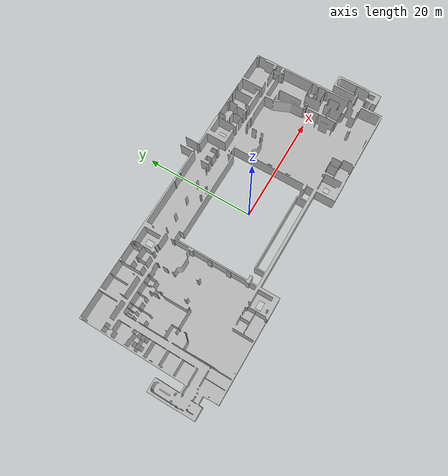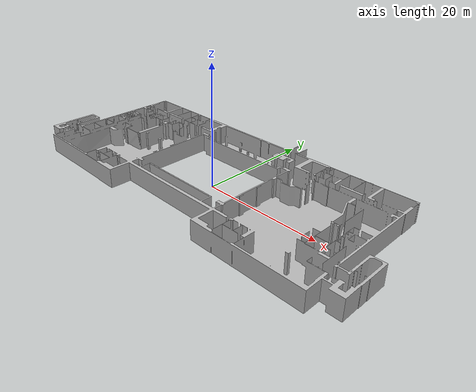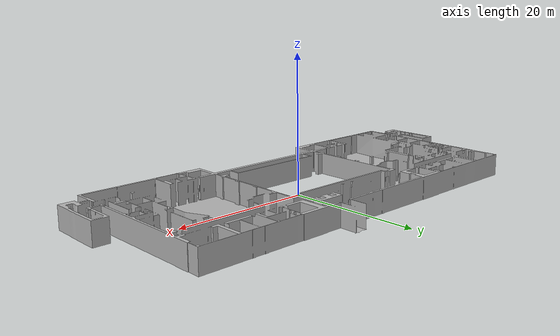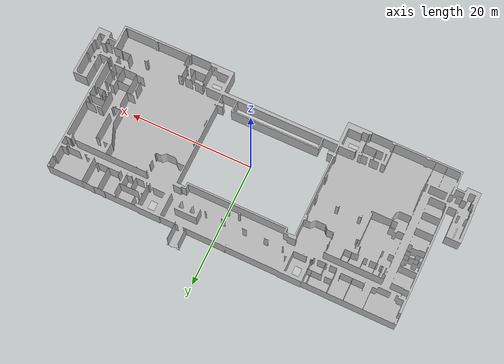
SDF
<?xml version="1.0" ?>
<sdf version="1.5">
  <model name="RC2016VRL_kouryu2f">
    <static>true</static>
    <pose>0 0 0 0 0 0</pose>
    <link name="link">
      <collision name="collision">
        <geometry>
          <mesh>
            <uri>model://RC2016VRL_kouryu2f/kouryu2f.dae</uri>
            <scale>0.178 0.178 0.178</scale>
          </mesh>
        </geometry>
      </collision>
      <visual name="visual">
        <geometry>
          <mesh>
            <uri>model://RC2016VRL_kouryu2f/kouryu2f.dae</uri>
            <scale>0.178 0.178 0.178</scale>
          </mesh>
        </geometry>
        <cast_shadows>false</cast_shadows>
      </visual>
    </link>
  </model>
</sdf>
